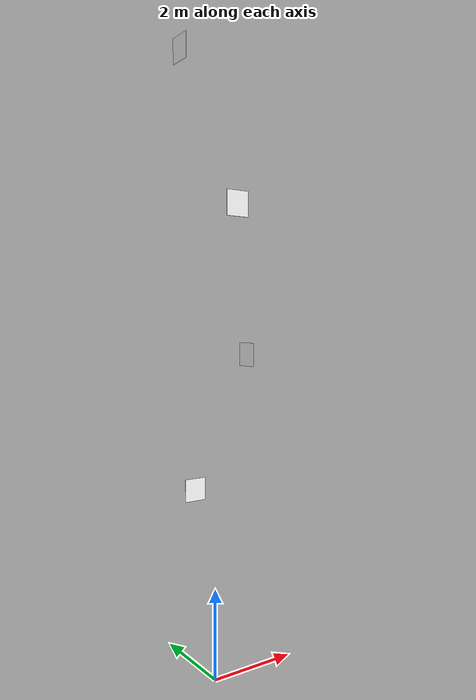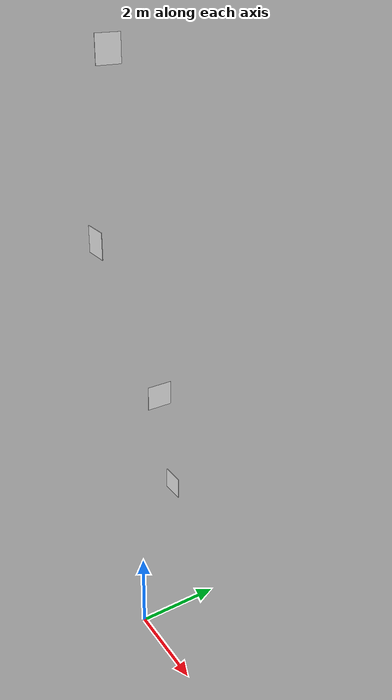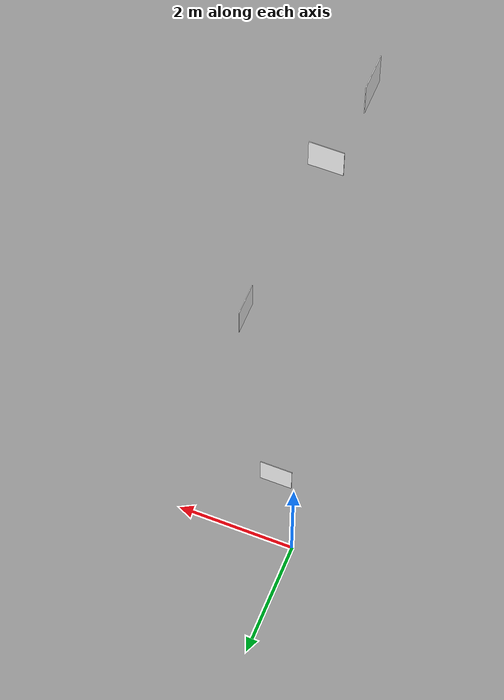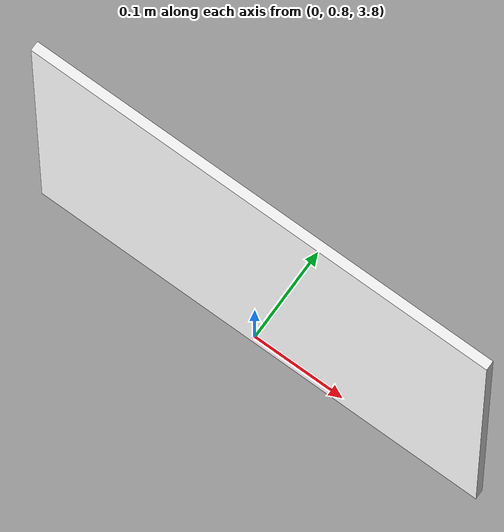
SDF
<?xml version='1.0'?>
<sdf version="1.9">
  <model name="defect_marker_turbine">
    <static>true</static>

    <!-- North face marker, box rotated so its flat face points north -->
    <link name="marker_0">
      <pose>0.0 0.81 4.0 -1.5708 0 0</pose>
      <visual name="marker_0_visual">
        <geometry>
          <box><size>0.5 0.5 0.01</size></box>
        </geometry>
        <material>
          <ambient>1 1 1 1</ambient>
          <diffuse>1 1 1 1</diffuse>
          <pbr>
            <metal>
              <albedo_map>model://defect_marker/marker_0.png</albedo_map>
              <roughness>1.0</roughness>
              <metalness>0.0</metalness>
            </metal>
          </pbr>
        </material>
      </visual>
    </link>

    <!-- East face marker, box rotated so its flat face points east -->
    <link name="marker_1">
      <pose>0.81 0.0 7.0 0 1.5708 0</pose>
      <visual name="marker_1_visual">
        <geometry>
          <box><size>0.5 0.5 0.01</size></box>
        </geometry>
        <material>
          <ambient>1 1 1 1</ambient>
          <diffuse>1 1 1 1</diffuse>
          <pbr>
            <metal>
              <albedo_map>model://defect_marker/marker_1.png</albedo_map>
              <roughness>1.0</roughness>
              <metalness>0.0</metalness>
            </metal>
          </pbr>
        </material>
      </visual>
    </link>

    <!-- South face marker, box rotated so its flat face points south -->
    <link name="marker_2">
      <pose>0.0 -0.81 10.0 1.5708 0 0</pose>
      <visual name="marker_2_visual">
        <geometry>
          <box><size>0.5 0.5 0.01</size></box>
        </geometry>
        <material>
          <ambient>1 1 1 1</ambient>
          <diffuse>1 1 1 1</diffuse>
          <pbr>
            <metal>
              <albedo_map>model://defect_marker/marker_2.png</albedo_map>
              <roughness>1.0</roughness>
              <metalness>0.0</metalness>
            </metal>
          </pbr>
        </material>
      </visual>
    </link>

    <!-- West face marker, box rotated so its flat face points west -->
    <link name="marker_3">
      <pose>-0.81 0.0 13.0 0 -1.5708 0</pose>
      <visual name="marker_3_visual">
        <geometry>
          <box><size>0.5 0.5 0.01</size></box>
        </geometry>
        <material>
          <ambient>1 1 1 1</ambient>
          <diffuse>1 1 1 1</diffuse>
          <pbr>
            <metal>
              <albedo_map>model://defect_marker/marker_3.png</albedo_map>
              <roughness>1.0</roughness>
              <metalness>0.0</metalness>
            </metal>
          </pbr>
        </material>
      </visual>
    </link>
  </model>
</sdf>
